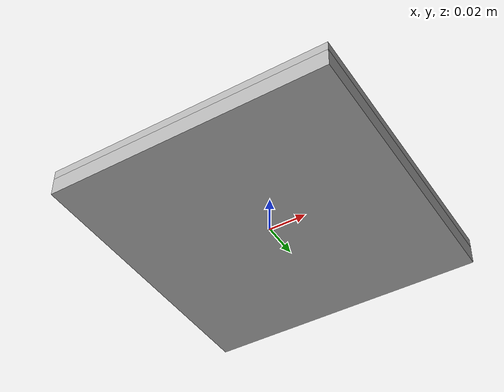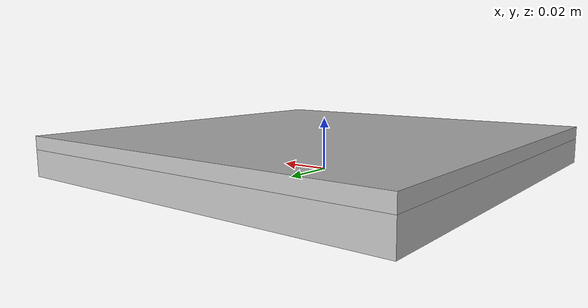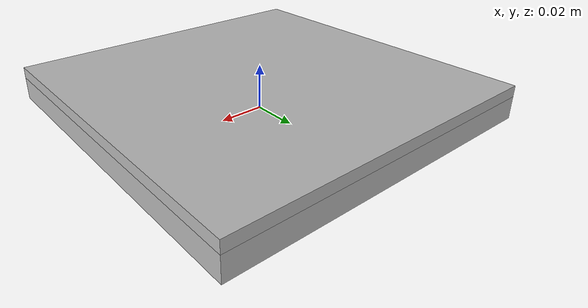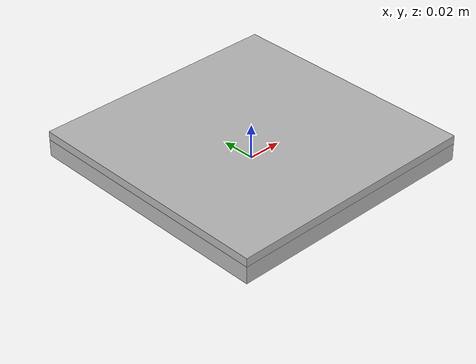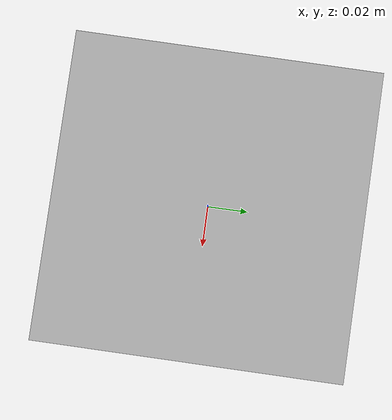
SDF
<?xml version="1.0" ?>
<sdf version="1.5">
  <model name="scale">
    <static>false</static>
    <link name="scale_base_link">
      <frame name="scale_base_frame"/>
      <pose>0 0 0.005 0 0 0</pose>
      <inertial> <!-- solid cuboid -->
        <mass>1.0</mass>
        <inertia>
          <ixx>1.88333e-3</ixx>
          <ixy>0.0</ixy>
          <ixz>0.0</ixz>
          <iyy>1.88333e-3</iyy>
          <iyz>0.0</iyz>
          <izz>3.75e-3</izz>
        </inertia>
      </inertial>
      <visual name="scale_base_visual">
        <geometry>
          <box>
            <size>0.15 0.15 0.01</size>
          </box>
        </geometry>
      </visual>
      <collision name="scale_base_collision">
        <max_contacts>20</max_contacts>
        <geometry>
          <box>
            <size>0.15 0.15 0.01</size>
          </box>
        </geometry>
      </collision>
    </link>

    <link name="scale_cover_link">
      <frame name="scale_cover_frame"/>
      <pose>0 0 0.0125 0 0 0</pose>
      <inertial>
        <mass>0.1</mass>
        <inertia>
          <ixx>1.88333e-4</ixx>
          <ixy>0.0</ixy>
          <ixz>0.0</ixz>
          <iyy>1.88333e-4</iyy>
          <iyz>0.0</iyz>
          <izz>3.75e-4</izz>
        </inertia>
      </inertial>
      <visual name="visual_scale_cover">
        <geometry>
          <box>
            <size>0.15 0.15 0.005</size>
          </box>
        </geometry>
      </visual>
      <collision name="scale_cover_link_collision">
        <max_contacts>20</max_contacts>
        <geometry>
          <box>
            <size>0.15 0.15 0.005</size>
          </box>
        </geometry>
        <surface>
          <friction>
            <torsional>
              <coefficient>1</coefficient> <!--added to try to prevent sherd model from sliding.  May not be necessary -->
            </torsional>
            <ode>
              <mu>1.0</mu>
              <mu2>1.0</mu2>
              <fdir1>1 0 0</fdir1> <!-- important to keep sherd model from sliding -->
            </ode>
          </friction>
        </surface>
      </collision>
      <sensor name='scale_contact_sensor' type='contact'>
        <contact>
          <collision>scale_cover_link_collision</collision>
        </contact>
        <pose>0 0 0.015 0 0 0</pose>
        <update_rate>10</update_rate>
        <plugin name="scale_bumper" filename="libgazebo_ros_bumper.so">
          <bumperTopicName>scale_contact_sensor</bumperTopicName>
          <frameName>scale_cover_frame</frameName>
        </plugin>
      </sensor>
    </link>

    <joint name="scale_joint" type="fixed">
      <parent>scale_base_link</parent>
      <child>scale_cover_link</child>
      <pose frame="scale_base_frame">0 0 0.015 0 0 0</pose>
      <sensor name="scale_ft_sensor" type="force_torque">
        <update_rate>10</update_rate>
      </sensor>
    </joint>

    <plugin name="ft_sensor" filename="libgazebo_ros_ft_sensor.so">
       <updateRate>10</updateRate>
       <topicName>scale_ft_sensor</topicName>
       <jointName>scale_joint</jointName>
    </plugin>

  </model>
</sdf>
